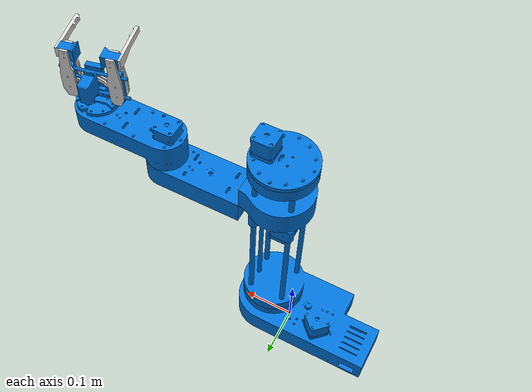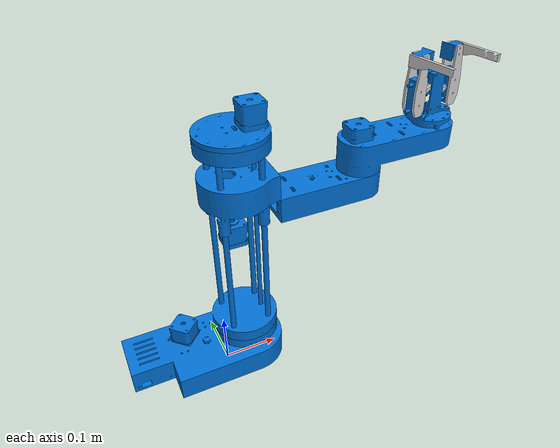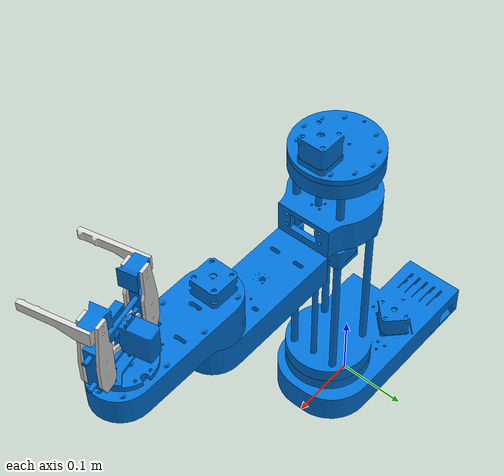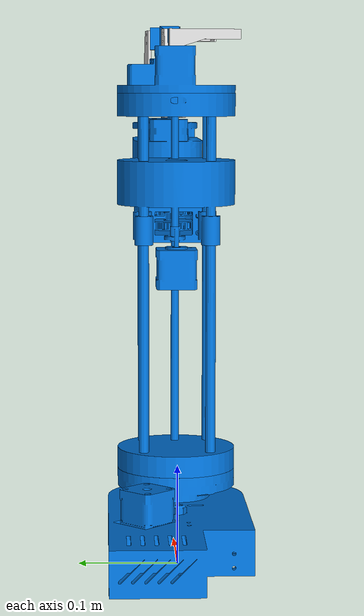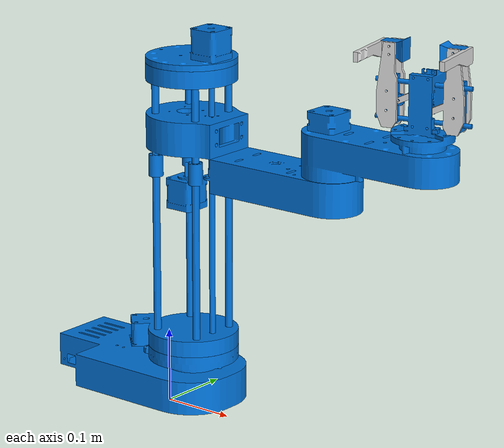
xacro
<?xml version="1.0" encoding="utf-8"?>
<robot name="scara_robot" xmlns:xacro="http://www.ros.org/wiki/xacro">

  <xacro:include filename="$(find scara_robot)/urdf/scara_ros2_control.xacro"/>
  <xacro:include filename="$(find scara_robot)/urdf/scara_gazebo.xacro"/>

  <!-- World Link -->
  <link name="world"/>

  <joint name="world_joint" type="fixed">
    <parent link="world"/>
    <child link="base_link"/>
    <origin xyz="0 0 0.05" rpy="0 0 0"/>
  </joint>

  <!-- BASE LINK -->
  <link name="base_link">
    <inertial>
      <origin xyz="-0.0242157 0.0226938 -0.0059842" rpy="0 0 0"/>
      <mass value="0.783325"/>
      <inertia ixx="0.001397" ixy="-0.000015" ixz="-0.0000056" iyy="0.0037036" iyz="-0.0000047" izz="0.0025245"/>
    </inertial>
    <visual>
      <origin xyz="0 0 0" rpy="0 0 0"/>
      <geometry>
        <mesh filename="package://scara_robot/meshes/base_link.STL"/>
      </geometry>
      <material name="blue">
        <color rgba="0.0 0.45 0.85 1.0"/>
      </material>
    </visual>
    <collision>
      <origin xyz="0 0 0" rpy="0 0 0"/>
      <geometry>
        <box size="0.2 0.2 0.1"/>
      </geometry>
    </collision>
  </link>

  <!-- J1 LINK (1st_Link - Rotating Tower with 4 Smooth Rods) -->
  <link name="j1_link">
    <inertial>
      <origin xyz="-0.0000225 -0.204863 0.0041018" rpy="0 0 0"/>
      <mass value="0.786046"/>
      <inertia ixx="0.0024636" ixy="0.00000018" ixz="-0.00000018" iyy="0.0009986" iyz="-0.0000057" izz="0.0024484"/>
    </inertial>
    <visual>
      <origin xyz="0 0 0" rpy="0 0 0"/>
      <geometry>
        <mesh filename="package://scara_robot/meshes/1st_Link.STL"/>
      </geometry>
      <material name="blue">
        <color rgba="0.0 0.45 0.85 1.0"/>
      </material>
    </visual>
  </link>

  <!-- JOINT 1 (J1 Revolute - Rotating Tower around vertical axis) -->
  <joint name="joint_1" type="revolute">
    <origin xyz="0.0425 0 0.023" rpy="-1.5708 0 -1.5708"/>
    <parent link="base_link"/>
    <child link="j1_link"/>
    <axis xyz="0 0 1"/>
    <limit lower="-3.14159" upper="3.14159" effort="100.0" velocity="2.0"/>
    <dynamics damping="1.0" friction="0.1"/>
  </joint>

  <!-- ARM1 LINK (2nd_Link - Vertical Sliding Carriage & Main Arm) -->
  <link name="arm1_link">
    <inertial>
      <origin xyz="-0.10909 0.026966 -0.0000556" rpy="0 0 0"/>
      <mass value="0.376369"/>
      <inertia ixx="0.0002251" ixy="-0.00000063" ixz="-0.00000118" iyy="0.001107" iyz="0.0000002" izz="0.0009586"/>
    </inertial>
    <visual>
      <origin xyz="0 0 0" rpy="0 0 0"/>
      <geometry>
        <mesh filename="package://scara_robot/meshes/2nd_Link.STL"/>
      </geometry>
      <material name="blue">
        <color rgba="0.0 0.45 0.85 1.0"/>
      </material>
    </visual>
  </link>

  <!-- JOINT 2 (Z Prismatic - Sliding up/down the 4 smooth rods) -->
  <joint name="joint_2" type="prismatic">
    <origin xyz="0 -0.2895 0.228" rpy="0 -1.5708 0"/>
    <parent link="j1_link"/>
    <child link="arm1_link"/>
    <axis xyz="0 1 0"/>
    <limit lower="-0.15" upper="0.05" effort="100.0" velocity="0.2"/>
    <dynamics damping="5.0" friction="0.2"/>
  </joint>

  <!-- ARM2 LINK (3rd_Link - Forearm) -->
  <link name="arm2_link">
    <inertial>
      <origin xyz="0.053634 0.034787 0.0000012" rpy="0 0 0"/>
      <mass value="0.422584"/>
      <inertia ixx="0.0002188" ixy="0.0000024" ixz="-0.00000001" iyy="0.001266" iyz="0.000000002" izz="0.0010788"/>
    </inertial>
    <visual>
      <origin xyz="0 0 0" rpy="0 0 0"/>
      <geometry>
        <mesh filename="package://scara_robot/meshes/3rd_Link.STL"/>
      </geometry>
      <material name="blue">
        <color rgba="0.0 0.45 0.85 1.0"/>
      </material>
    </visual>
  </link>

  <!-- JOINT 3 (J2 Revolute - Forearm Elbow Rotation around vertical axis) -->
  <joint name="joint_3" type="revolute">
    <origin xyz="0 0 0" rpy="-3.1416 0.0045344 0"/>
    <parent link="arm1_link"/>
    <child link="arm2_link"/>
    <axis xyz="0 1 0"/>
    <limit lower="-3.14159" upper="3.14159" effort="100.0" velocity="2.0"/>
    <dynamics damping="1.0" friction="0.1"/>
  </joint>

  <!-- 4TH LINK (Wrist Connector / End Effector) -->
  <link name="4th_Link">
    <inertial>
      <origin xyz="0.0036767 -0.0710427 0.0012508" rpy="0 0 0"/>
      <mass value="0.184579"/>
      <inertia ixx="0.00006076" ixy="0.00000009" ixz="0.00000364" iyy="0.00006135" iyz="0.00000003" izz="0.00005062"/>
    </inertial>
    <visual>
      <origin xyz="0 0 0" rpy="0 0 0"/>
      <geometry>
        <mesh filename="package://scara_robot/meshes/4th_Link.STL"/>
      </geometry>
      <material name="blue">
        <color rgba="0.0 0.45 0.85 1.0"/>
      </material>
    </visual>
  </link>

  <!-- JOINT 4 (J4 Continuous Roll) -->
  <joint name="joint_4" type="continuous">
    <origin xyz="0.1365 0.0316 0" rpy="3.1416 1.473 0"/>
    <parent link="arm2_link"/>
    <child link="4th_Link"/>
    <axis xyz="0 1 0"/>
    <limit effort="10.0" velocity="2.0"/>
    <dynamics damping="0.1" friction="0.01"/>
  </joint>

  <!-- LEFT FINGER LINK -->
  <link name="left_finger_Link">
    <inertial>
      <origin xyz="0.0284209 0.0204324 0.0599893" rpy="0 0 0"/>
      <mass value="0.0338624"/>
      <inertia ixx="0.00002392" ixy="-0.00000124" ixz="-0.0000002" iyy="0.00001663" iyz="-0.00000058" izz="0.0000105"/>
    </inertial>
    <visual>
      <origin xyz="0 0 0" rpy="0 0 0"/>
      <geometry>
        <mesh filename="package://scara_robot/meshes/left_finger_Link.STL"/>
      </geometry>
      <material name="white">
        <color rgba="0.85 0.85 0.85 1"/>
      </material>
    </visual>
  </link>

  <!-- JOINT LEFT -->
  <joint name="joint_left" type="fixed">
    <origin xyz="0.021804 -0.0589 -0.025035" rpy="-1.5708 -1.2566 -3.1416"/>
    <parent link="4th_Link"/>
    <child link="left_finger_Link"/>
  </joint>

  <!-- RIGHT FINGER LINK -->
  <link name="right_finger_Link">
    <inertial>
      <origin xyz="-0.028422 0.020118 0.0599566" rpy="0 0 0"/>
      <mass value="0.0338937"/>
      <inertia ixx="0.00002392" ixy="0.00000124" ixz="0.00000029" iyy="0.00001663" iyz="-0.00000058" izz="0.0000105"/>
    </inertial>
    <visual>
      <origin xyz="0 0 0" rpy="0 0 0"/>
      <geometry>
        <mesh filename="package://scara_robot/meshes/right_finger_Link.STL"/>
      </geometry>
      <material name="white">
        <color rgba="0.85 0.85 0.85 1"/>
      </material>
    </visual>
  </link>

  <!-- JOINT RIGHT -->
  <joint name="joint_right" type="fixed">
    <origin xyz="0.061096 0 0" rpy="0 0 0"/>
    <parent link="left_finger_Link"/>
    <child link="right_finger_Link"/>
  </joint>

</robot>
